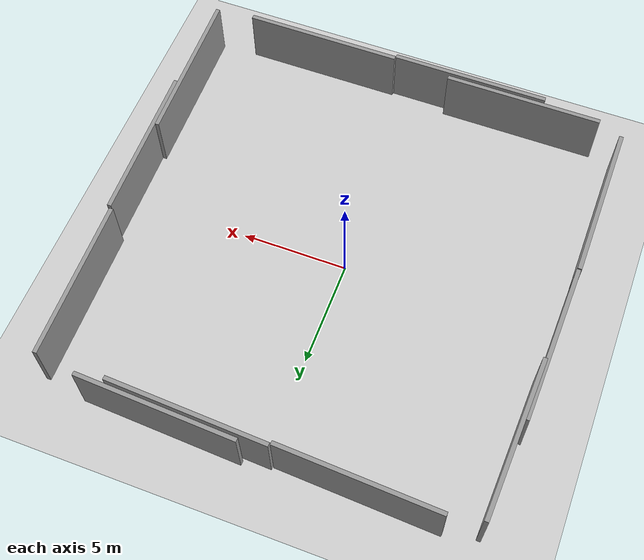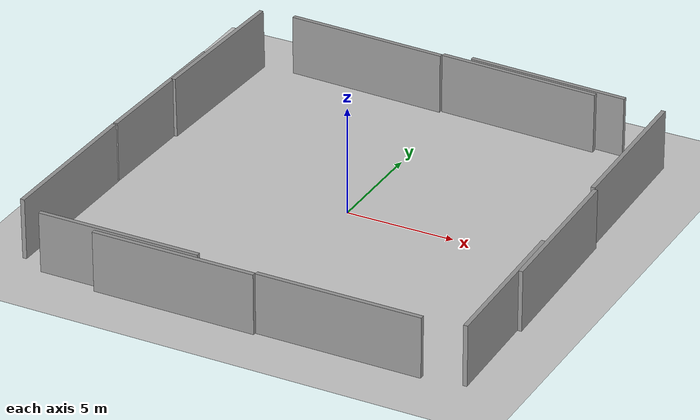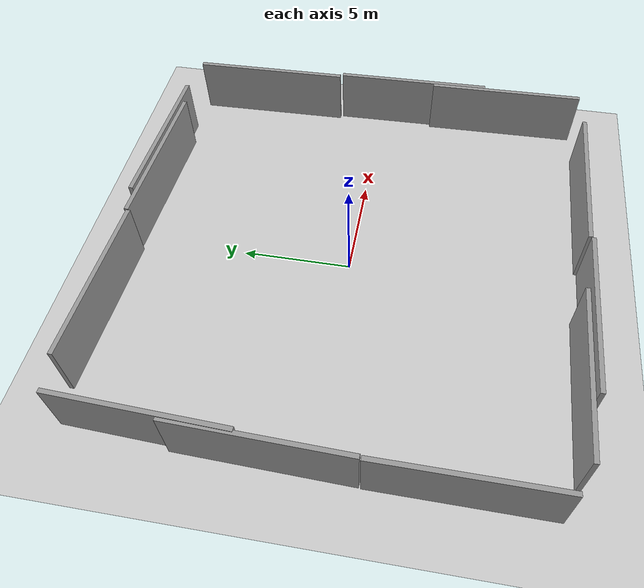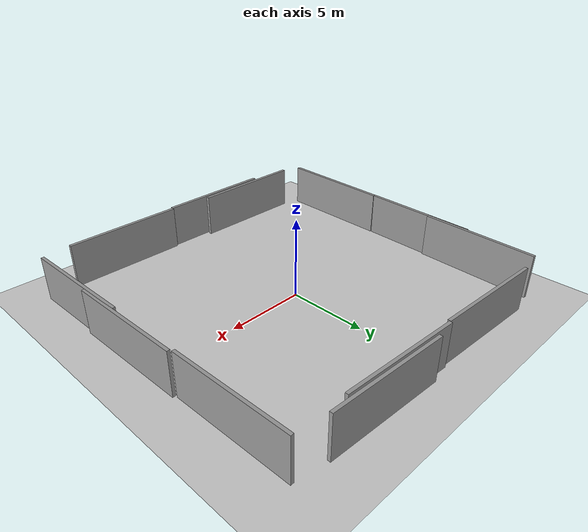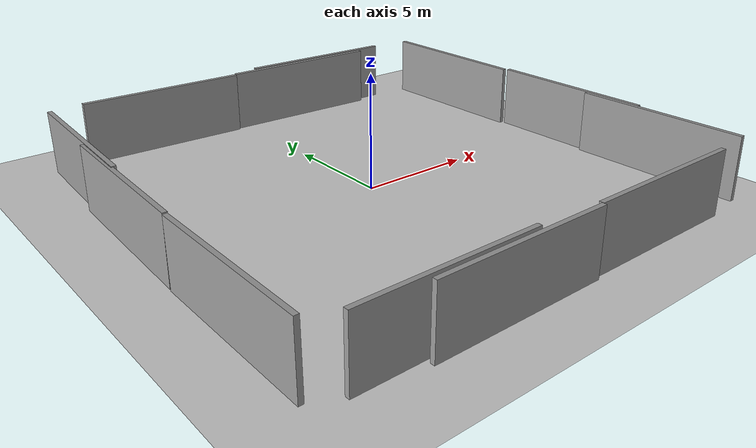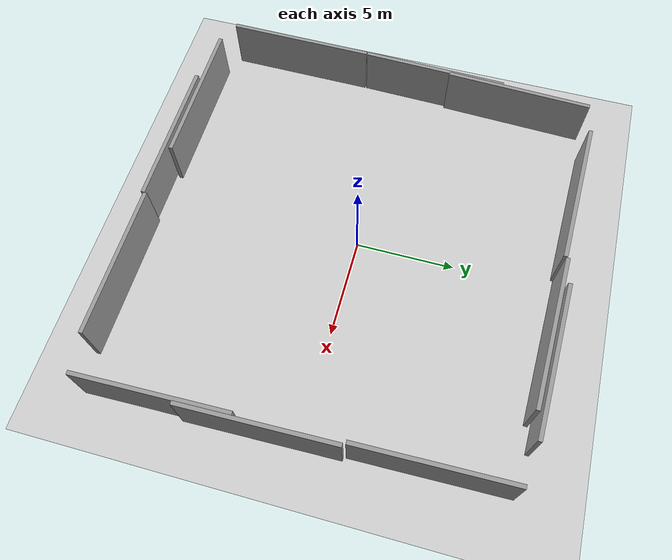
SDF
<sdf version="1.7">
 <world name="default">
  <light name="sun" type="directional">
   <pose>0 0 10 0 -0 0</pose>
   <diffuse>0.8 0.8 0.8 1</diffuse>
   <specular>0.2 0.2 0.2 1</specular>
   <attenuation>
    <range>1000</range>
    <constant>0.9</constant>
    <linear>0.01</linear>
    <quadratic>0.001</quadratic>
   </attenuation>
   <direction>-0.5 0.1 -0.9</direction>
   <spot><inner_angle>0</inner_angle><outer_angle>0</outer_angle><falloff>0</falloff></spot>
  </light>
  <model name="ground_plane">
   <static>1</static>
   <link name="link">
    <collision name="collision">
     <geometry><plane><normal>0 0 1</normal><size>100 100</size></plane></geometry>
     <surface><friction><ode><mu>100</mu><mu2>50</mu2></ode></friction></surface>
    </collision>
    <visual name="visual">
     <cast_shadows>0</cast_shadows>
     <geometry><plane><normal>0 0 1</normal><size>100 100</size></plane></geometry>
     <material>
      <script><uri>file://media/materials/scripts/gazebo.material</uri><name>Gazebo/Grey</name></script>
     </material>
    </visual>
   </link>
  </model>
  <gravity>0 0 -9.8</gravity>
  <magnetic_field>6e-06 2.3e-05 -4.2e-05</magnetic_field>
  <atmosphere type="adiabatic"/>
  <physics type="ode">
   <max_step_size>0.001</max_step_size>
   <real_time_factor>1</real_time_factor>
   <real_time_update_rate>1000</real_time_update_rate>
  </physics>
  <scene><ambient>0.4 0.4 0.4 1</ambient><background>0.7 0.7 0.7 1</background><shadows>1</shadows></scene>
  <audio><device>default</device></audio>
  <spherical_coordinates>
   <surface_model>EARTH_WGS84</surface_model>
   <latitude_deg>0</latitude_deg>
   <longitude_deg>0</longitude_deg>
   <elevation>0</elevation>
   <heading_deg>0</heading_deg>
  </spherical_coordinates>
  <model name="grey_wall">
   <static>1</static>
   <link name="link">
    <pose>0 0 1.4 0 -0 0</pose>
    <collision name="collision"><geometry><box><size>7.5 0.2 2.8</size></box></geometry></collision>
    <visual name="visual">
     <cast_shadows>0</cast_shadows>
     <geometry><box><size>7.5 0.2 2.8</size></box></geometry>
     <material>
      <script>
       <uri>model://grey_wall/materials/scripts</uri>
       <uri>model://grey_wall/materials/textures</uri>
       <name>vrc/grey_wall</name>
      </script>
     </material>
    </visual>
   </link>
   <pose>-10.1088 -5.92218 0 0.005477 -0.005986 -1.57551</pose>
  </model>
  <model name="grey_wall_0">
   <static>1</static>
   <link name="link">
    <pose>0 0 1.4 0 -0 0</pose>
    <collision name="collision"><geometry><box><size>7.5 0.2 2.8</size></box></geometry></collision>
    <visual name="visual">
     <cast_shadows>0</cast_shadows>
     <geometry><box><size>7.5 0.2 2.8</size></box></geometry>
     <material>
      <script>
       <uri>model://grey_wall/materials/scripts</uri>
       <uri>model://grey_wall/materials/textures</uri>
       <name>vrc/grey_wall</name>
      </script>
     </material>
    </visual>
   </link>
   <pose>-9.66255 6.23333 0.036598 -0.016143 -0.000608 1.53308</pose>
  </model>
  <model name="grey_wall_1">
   <static>1</static>
   <link name="link">
    <pose>0 0 1.4 0 -0 0</pose>
    <collision name="collision"><geometry><box><size>7.5 0.2 2.8</size></box></geometry></collision>
    <visual name="visual">
     <cast_shadows>0</cast_shadows>
     <geometry><box><size>7.5 0.2 2.8</size></box></geometry>
     <material>
      <script>
       <uri>model://grey_wall/materials/scripts</uri>
       <uri>model://grey_wall/materials/textures</uri>
       <name>vrc/grey_wall</name>
      </script>
     </material>
    </visual>
   </link>
   <pose>-9.98454 1.64621 0 0 -0 1.54509</pose>
  </model>
  <model name="grey_wall_2">
   <static>1</static>
   <link name="link">
    <pose>0 0 1.4 0 -0 0</pose>
    <collision name="collision"><geometry><box><size>7.5 0.2 2.8</size></box></geometry></collision>
    <visual name="visual">
     <cast_shadows>0</cast_shadows>
     <geometry><box><size>7.5 0.2 2.8</size></box></geometry>
     <material>
      <script>
       <uri>model://grey_wall/materials/scripts</uri>
       <uri>model://grey_wall/materials/textures</uri>
       <name>vrc/grey_wall</name>
      </script>
     </material>
    </visual>
   </link>
   <pose>5.04188 -10.4001 0 0 -0 0</pose>
  </model>
  <model name="grey_wall_3">
   <static>1</static>
   <link name="link">
    <pose>0 0 1.4 0 -0 0</pose>
    <collision name="collision"><geometry><box><size>7.5 0.2 2.8</size></box></geometry></collision>
    <visual name="visual">
     <cast_shadows>0</cast_shadows>
     <geometry><box><size>7.5 0.2 2.8</size></box></geometry>
     <material>
      <script>
       <uri>model://grey_wall/materials/scripts</uri>
       <uri>model://grey_wall/materials/textures</uri>
       <name>vrc/grey_wall</name>
      </script>
     </material>
    </visual>
   </link>
   <pose>-2.48184 -10.5323 0 0 -0 0</pose>
  </model>
  <model name="grey_wall_4">
   <static>1</static>
   <link name="link">
    <pose>0 0 1.4 0 -0 0</pose>
    <collision name="collision"><geometry><box><size>7.5 0.2 2.8</size></box></geometry></collision>
    <visual name="visual">
     <cast_shadows>0</cast_shadows>
     <geometry><box><size>7.5 0.2 2.8</size></box></geometry>
     <material>
      <script>
       <uri>model://grey_wall/materials/scripts</uri>
       <uri>model://grey_wall/materials/textures</uri>
       <name>vrc/grey_wall</name>
      </script>
     </material>
    </visual>
   </link>
   <pose>-5.24032 -10.1769 0 0 -0 0</pose>
  </model>
  <model name="grey_wall_5">
   <static>1</static>
   <link name="link">
    <pose>0 0 1.4 0 -0 0</pose>
    <collision name="collision"><geometry><box><size>7.5 0.2 2.8</size></box></geometry></collision>
    <visual name="visual">
     <cast_shadows>0</cast_shadows>
     <geometry><box><size>7.5 0.2 2.8</size></box></geometry>
     <material>
      <script>
       <uri>model://grey_wall/materials/scripts</uri>
       <uri>model://grey_wall/materials/textures</uri>
       <name>vrc/grey_wall</name>
      </script>
     </material>
    </visual>
   </link>
   <pose>10.2682 6.00025 0 0 0 -1.54943</pose>
  </model>
  <model name="grey_wall_5_clone">
   <static>1</static>
   <link name="link">
    <pose>0 0 1.4 0 -0 0</pose>
    <collision name="collision"><geometry><box><size>7.5 0.2 2.8</size></box></geometry></collision>
    <visual name="visual">
     <cast_shadows>0</cast_shadows>
     <geometry><box><size>7.5 0.2 2.8</size></box></geometry>
     <material>
      <script>
       <uri>model://grey_wall/materials/scripts</uri>
       <uri>model://grey_wall/materials/textures</uri>
       <name>vrc/grey_wall</name>
      </script>
     </material>
    </visual>
   </link>
   <pose>10.5964 -1.61908 0 0 0 -1.54943</pose>
  </model>
  <model name="grey_wall_5_clone_0">
   <static>1</static>
   <link name="link">
    <pose>0 0 1.4 0 -0 0</pose>
    <collision name="collision"><geometry><box><size>7.5 0.2 2.8</size></box></geometry></collision>
    <visual name="visual">
     <cast_shadows>0</cast_shadows>
     <geometry><box><size>7.5 0.2 2.8</size></box></geometry>
     <material>
      <script>
       <uri>model://grey_wall/materials/scripts</uri>
       <uri>model://grey_wall/materials/textures</uri>
       <name>vrc/grey_wall</name>
      </script>
     </material>
    </visual>
   </link>
   <pose>10.5182 -6.44938 0 0 0 -1.54943</pose>
  </model>
  <model name="grey_wall_5_clone_1">
   <static>1</static>
   <link name="link">
    <pose>0 0 1.4 0 -0 0</pose>
    <collision name="collision"><geometry><box><size>7.5 0.2 2.8</size></box></geometry></collision>
    <visual name="visual">
     <cast_shadows>0</cast_shadows>
     <geometry><box><size>7.5 0.2 2.8</size></box></geometry>
     <material>
      <script>
       <uri>model://grey_wall/materials/scripts</uri>
       <uri>model://grey_wall/materials/textures</uri>
       <name>vrc/grey_wall</name>
      </script>
     </material>
    </visual>
   </link>
   <pose>-4.30874 10.07 0 0 0 -0.040258</pose>
  </model>
  <model name="grey_wall_5_clone_1_clone">
   <static>1</static>
   <link name="link">
    <pose>0 0 1.4 0 -0 0</pose>
    <collision name="collision"><geometry><box><size>7.5 0.2 2.8</size></box></geometry></collision>
    <visual name="visual">
     <cast_shadows>0</cast_shadows>
     <geometry><box><size>7.5 0.2 2.8</size></box></geometry>
     <material>
      <script>
       <uri>model://grey_wall/materials/scripts</uri>
       <uri>model://grey_wall/materials/textures</uri>
       <name>vrc/grey_wall</name>
      </script>
     </material>
    </visual>
   </link>
   <pose>3.23251 9.88676 0 0 0 -0.040258</pose>
  </model>
  <model name="grey_wall_5_clone_1_clone_0">
   <static>1</static>
   <link name="link">
    <pose>0 0 1.4 0 -0 0</pose>
    <collision name="collision"><geometry><box><size>7.5 0.2 2.8</size></box></geometry></collision>
    <visual name="visual">
     <cast_shadows>0</cast_shadows>
     <geometry><box><size>7.5 0.2 2.8</size></box></geometry>
     <material>
      <script>
       <uri>model://grey_wall/materials/scripts</uri>
       <uri>model://grey_wall/materials/textures</uri>
       <name>vrc/grey_wall</name>
      </script>
     </material>
    </visual>
   </link>
   <pose>4.50764 10.1574 0 0 0 -0.040258</pose>
  </model>
 </world>
</sdf>
